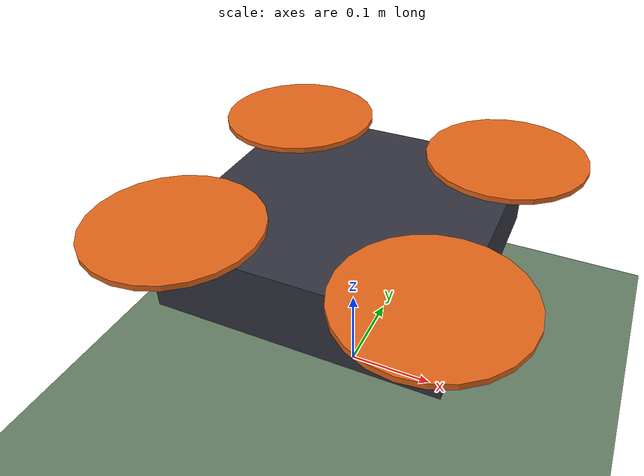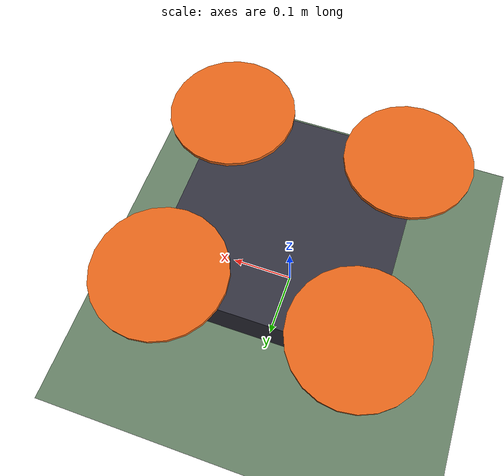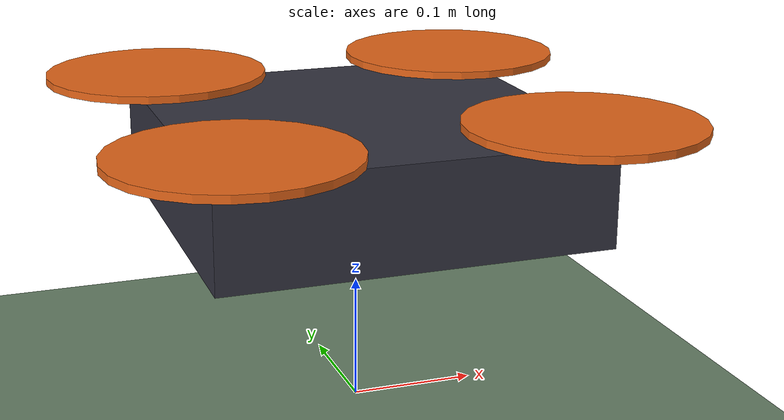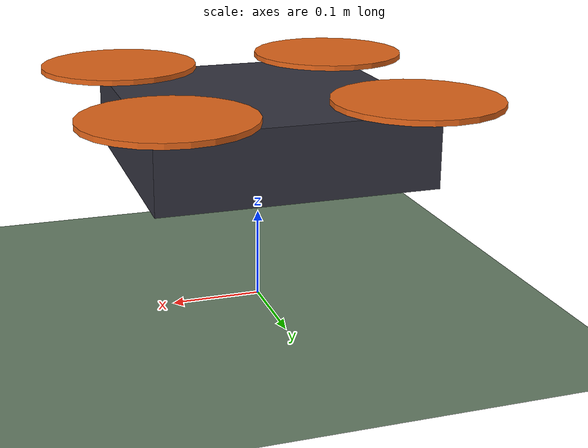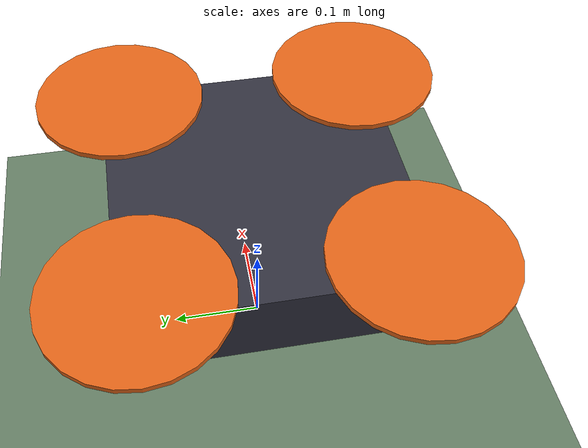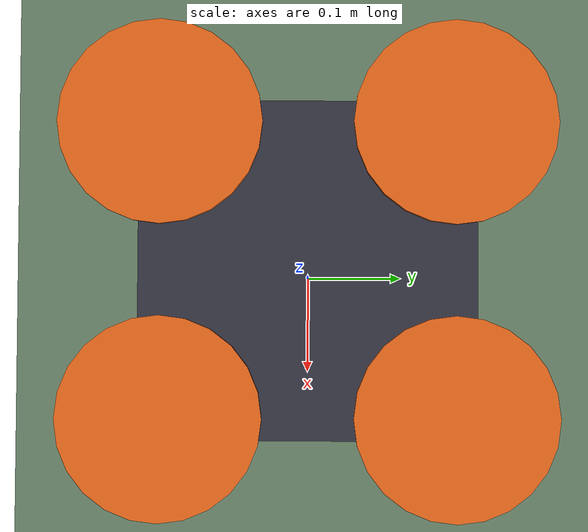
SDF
<?xml version="1.0"?>
<sdf version="1.9">
  <world name="drone_world">
    <physics name="1ms" type="ignored">
      <max_step_size>0.001</max_step_size>
      <real_time_factor>1.0</real_time_factor>
    </physics>

    <plugin filename="gz-sim-physics-system" name="gz::sim::systems::Physics"/>
    <plugin filename="gz-sim-user-commands-system" name="gz::sim::systems::UserCommands"/>
    <plugin filename="gz-sim-scene-broadcaster-system" name="gz::sim::systems::SceneBroadcaster"/>
    <plugin filename="gz-sim-sensors-system" name="gz::sim::systems::Sensors">
      <render_engine>ogre2</render_engine>
    </plugin>
    <plugin filename="gz-sim-imu-system" name="gz::sim::systems::Imu"/>
    <plugin filename="gz-sim-air-pressure-system" name="gz::sim::systems::AirPressure"/>

    <gravity>0 0 -9.8</gravity>

    <light type="directional" name="sun">
      <cast_shadows>true</cast_shadows>
      <pose>0 0 10 0 0 0</pose>
      <diffuse>0.9 0.9 0.9 1</diffuse>
      <specular>0.2 0.2 0.2 1</specular>
      <direction>-0.5 0.1 -0.9</direction>
    </light>

    <model name="ground_plane">
      <static>true</static>
      <link name="link">
        <collision name="collision">
          <geometry><plane><normal>0 0 1</normal><size>200 200</size></plane></geometry>
        </collision>
        <visual name="visual">
          <geometry><plane><normal>0 0 1</normal><size>200 200</size></plane></geometry>
          <material>
            <ambient>0.3 0.35 0.3 1</ambient>
            <diffuse>0.4 0.5 0.4 1</diffuse>
          </material>
        </visual>
      </link>
    </model>

    <include>
      <uri>model://quadcopter</uri>
    </include>
  </world>
</sdf>

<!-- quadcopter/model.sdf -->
<sdf version="1.9">
  <model name="quadcopter">
    <pose>0 0 0.2 0 0 0</pose>

    <link name="base_link">
      <inertial>
        <mass>1.5</mass>
        <inertia>
          <ixx>0.01205</ixx><ixy>0</ixy><ixz>0</ixz>
          <iyy>0.01205</iyy><iyz>0</iyz>
          <izz>0.0225</izz>
        </inertia>
      </inertial>
      <collision name="base_collision">
        <geometry><box><size>0.30 0.30 0.08</size></box></geometry>
      </collision>
      <visual name="base_visual">
        <geometry><box><size>0.30 0.30 0.08</size></box></geometry>
        <material>
          <ambient>0.15 0.15 0.18 1</ambient>
          <diffuse>0.2 0.2 0.25 1</diffuse>
        </material>
      </visual>

      <sensor name="imu_sensor" type="imu">
        <always_on>1</always_on>
        <update_rate>250</update_rate>
        <topic>imu</topic>
      </sensor>
      <sensor name="air_pressure" type="air_pressure">
        <always_on>1</always_on>
        <update_rate>50</update_rate>
        <topic>air_pressure</topic>
      </sensor>
    </link>

    <link name="rotor_0">
      <pose>0.13 -0.13 0.05 0 0 0</pose>
      <inertial>
        <mass>0.016</mass>
        <inertia>
          <ixx>3.2448e-05</ixx><ixy>0</ixy><ixz>0</ixz>
          <iyy>3.2448e-05</iyy><iyz>0</iyz>
          <izz>6.48e-05</izz>
        </inertia>
      </inertial>
      <collision name="rotor_0_collision">
        <geometry><cylinder><radius>0.09</radius><length>0.006</length></cylinder></geometry>
      </collision>
      <visual name="rotor_0_visual">
        <geometry><cylinder><radius>0.09</radius><length>0.006</length></cylinder></geometry>
        <material>
          <ambient>0.8 0.3 0.1 1</ambient>
          <diffuse>0.9 0.4 0.1 1</diffuse>
        </material>
      </visual>
    </link>

    <joint name="rotor_0_joint" type="revolute">
      <parent>base_link</parent>
      <child>rotor_0</child>
      <axis>
        <xyz>0 0 1</xyz>
        <limit><lower>-1e16</lower><upper>1e16</upper></limit>
      </axis>
    </joint>

    <link name="rotor_1">
      <pose>-0.13 0.13 0.05 0 0 0</pose>
      <inertial>
        <mass>0.016</mass>
        <inertia>
          <ixx>3.2448e-05</ixx><ixy>0</ixy><ixz>0</ixz>
          <iyy>3.2448e-05</iyy><iyz>0</iyz>
          <izz>6.48e-05</izz>
        </inertia>
      </inertial>
      <collision name="rotor_1_collision">
        <geometry><cylinder><radius>0.09</radius><length>0.006</length></cylinder></geometry>
      </collision>
      <visual name="rotor_1_visual">
        <geometry><cylinder><radius>0.09</radius><length>0.006</length></cylinder></geometry>
        <material>
          <ambient>0.8 0.3 0.1 1</ambient>
          <diffuse>0.9 0.4 0.1 1</diffuse>
        </material>
      </visual>
    </link>

    <joint name="rotor_1_joint" type="revolute">
      <parent>base_link</parent>
      <child>rotor_1</child>
      <axis>
        <xyz>0 0 1</xyz>
        <limit><lower>-1e16</lower><upper>1e16</upper></limit>
      </axis>
    </joint>

    <link name="rotor_2">
      <pose>0.13 0.13 0.05 0 0 0</pose>
      <inertial>
        <mass>0.016</mass>
        <inertia>
          <ixx>3.2448e-05</ixx><ixy>0</ixy><ixz>0</ixz>
          <iyy>3.2448e-05</iyy><iyz>0</iyz>
          <izz>6.48e-05</izz>
        </inertia>
      </inertial>
      <collision name="rotor_2_collision">
        <geometry><cylinder><radius>0.09</radius><length>0.006</length></cylinder></geometry>
      </collision>
      <visual name="rotor_2_visual">
        <geometry><cylinder><radius>0.09</radius><length>0.006</length></cylinder></geometry>
        <material>
          <ambient>0.8 0.3 0.1 1</ambient>
          <diffuse>0.9 0.4 0.1 1</diffuse>
        </material>
      </visual>
    </link>

    <joint name="rotor_2_joint" type="revolute">
      <parent>base_link</parent>
      <child>rotor_2</child>
      <axis>
        <xyz>0 0 1</xyz>
        <limit><lower>-1e16</lower><upper>1e16</upper></limit>
      </axis>
    </joint>

    <link name="rotor_3">
      <pose>-0.13 -0.13 0.05 0 0 0</pose>
      <inertial>
        <mass>0.016</mass>
        <inertia>
          <ixx>3.2448e-05</ixx><ixy>0</ixy><ixz>0</ixz>
          <iyy>3.2448e-05</iyy><iyz>0</iyz>
          <izz>6.48e-05</izz>
        </inertia>
      </inertial>
      <collision name="rotor_3_collision">
        <geometry><cylinder><radius>0.09</radius><length>0.006</length></cylinder></geometry>
      </collision>
      <visual name="rotor_3_visual">
        <geometry><cylinder><radius>0.09</radius><length>0.006</length></cylinder></geometry>
        <material>
          <ambient>0.8 0.3 0.1 1</ambient>
          <diffuse>0.9 0.4 0.1 1</diffuse>
        </material>
      </visual>
    </link>

    <joint name="rotor_3_joint" type="revolute">
      <parent>base_link</parent>
      <child>rotor_3</child>
      <axis>
        <xyz>0 0 1</xyz>
        <limit><lower>-1e16</lower><upper>1e16</upper></limit>
      </axis>
    </joint>

    <plugin filename="gz-sim-multicopter-motor-model-system"
            name="gz::sim::systems::MulticopterMotorModel">
      <robotNamespace>quadcopter</robotNamespace>
      <jointName>rotor_0_joint</jointName>
      <linkName>rotor_0</linkName>
      <turningDirection>ccw</turningDirection>
      <timeConstantUp>0.0125</timeConstantUp>
      <timeConstantDown>0.025</timeConstantDown>
      <maxRotVelocity>1000.0</maxRotVelocity>
      <motorConstant>8.54858e-06</motorConstant>
      <momentConstant>0.016</momentConstant>
      <commandSubTopic>gazebo/command/motor_speed</commandSubTopic>
      <motorNumber>0</motorNumber>
      <rotorDragCoefficient>8.06428e-05</rotorDragCoefficient>
      <rollingMomentCoefficient>1e-06</rollingMomentCoefficient>
      <rotorVelocitySlowdownSim>10</rotorVelocitySlowdownSim>
      <motorType>velocity</motorType>
    </plugin>

    <plugin filename="gz-sim-multicopter-motor-model-system"
            name="gz::sim::systems::MulticopterMotorModel">
      <robotNamespace>quadcopter</robotNamespace>
      <jointName>rotor_1_joint</jointName>
      <linkName>rotor_1</linkName>
      <turningDirection>ccw</turningDirection>
      <timeConstantUp>0.0125</timeConstantUp>
      <timeConstantDown>0.025</timeConstantDown>
      <maxRotVelocity>1000.0</maxRotVelocity>
      <motorConstant>8.54858e-06</motorConstant>
      <momentConstant>0.016</momentConstant>
      <commandSubTopic>gazebo/command/motor_speed</commandSubTopic>
      <motorNumber>1</motorNumber>
      <rotorDragCoefficient>8.06428e-05</rotorDragCoefficient>
      <rollingMomentCoefficient>1e-06</rollingMomentCoefficient>
      <rotorVelocitySlowdownSim>10</rotorVelocitySlowdownSim>
      <motorType>velocity</motorType>
    </plugin>

    <plugin filename="gz-sim-multicopter-motor-model-system"
            name="gz::sim::systems::MulticopterMotorModel">
      <robotNamespace>quadcopter</robotNamespace>
      <jointName>rotor_2_joint</jointName>
      <linkName>rotor_2</linkName>
      <turningDirection>cw</turningDirection>
      <timeConstantUp>0.0125</timeConstantUp>
      <timeConstantDown>0.025</timeConstantDown>
      <maxRotVelocity>1000.0</maxRotVelocity>
      <motorConstant>8.54858e-06</motorConstant>
      <momentConstant>0.016</momentConstant>
      <commandSubTopic>gazebo/command/motor_speed</commandSubTopic>
      <motorNumber>2</motorNumber>
      <rotorDragCoefficient>8.06428e-05</rotorDragCoefficient>
      <rollingMomentCoefficient>1e-06</rollingMomentCoefficient>
      <rotorVelocitySlowdownSim>10</rotorVelocitySlowdownSim>
      <motorType>velocity</motorType>
    </plugin>

    <plugin filename="gz-sim-multicopter-motor-model-system"
            name="gz::sim::systems::MulticopterMotorModel">
      <robotNamespace>quadcopter</robotNamespace>
      <jointName>rotor_3_joint</jointName>
      <linkName>rotor_3</linkName>
      <turningDirection>cw</turningDirection>
      <timeConstantUp>0.0125</timeConstantUp>
      <timeConstantDown>0.025</timeConstantDown>
      <maxRotVelocity>1000.0</maxRotVelocity>
      <motorConstant>8.54858e-06</motorConstant>
      <momentConstant>0.016</momentConstant>
      <commandSubTopic>gazebo/command/motor_speed</commandSubTopic>
      <motorNumber>3</motorNumber>
      <rotorDragCoefficient>8.06428e-05</rotorDragCoefficient>
      <rollingMomentCoefficient>1e-06</rollingMomentCoefficient>
      <rotorVelocitySlowdownSim>10</rotorVelocitySlowdownSim>
      <motorType>velocity</motorType>
    </plugin>

    <plugin filename="gz-sim-multicopter-control-system"
            name="gz::sim::systems::MulticopterVelocityControl">
      <robotNamespace>quadcopter</robotNamespace>
      <commandSubTopic>cmd_vel</commandSubTopic>
      <enableSubTopic>enable</enableSubTopic>
      <comLinkName>base_link</comLinkName>
      <velocityGain>2.7 2.7 2.7</velocityGain>
      <attitudeGain>2 3 0.15</attitudeGain>
      <angularRateGain>0.4 0.52 0.18</angularRateGain>
      <maximumLinearAcceleration>2 2 2</maximumLinearAcceleration>
      <rotorConfiguration>
        <rotor>
          <jointName>rotor_0_joint</jointName>
          <forceConstant>8.54858e-06</forceConstant>
          <momentConstant>0.016</momentConstant>
          <direction>1</direction>
        </rotor>
        <rotor>
          <jointName>rotor_1_joint</jointName>
          <forceConstant>8.54858e-06</forceConstant>
          <momentConstant>0.016</momentConstant>
          <direction>1</direction>
        </rotor>
        <rotor>
          <jointName>rotor_2_joint</jointName>
          <forceConstant>8.54858e-06</forceConstant>
          <momentConstant>0.016</momentConstant>
          <direction>-1</direction>
        </rotor>
        <rotor>
          <jointName>rotor_3_joint</jointName>
          <forceConstant>8.54858e-06</forceConstant>
          <momentConstant>0.016</momentConstant>
          <direction>-1</direction>
        </rotor>
      </rotorConfiguration>
    </plugin>

    <plugin filename="gz-sim-odometry-publisher-system"
            name="gz::sim::systems::OdometryPublisher">
      <odom_frame>world</odom_frame>
      <robot_base_frame>base_link</robot_base_frame>
      <odom_topic>odom</odom_topic>
      <dimensions>3</dimensions>
      <odom_publish_frequency>50</odom_publish_frequency>
    </plugin>

  </model>
</sdf>
